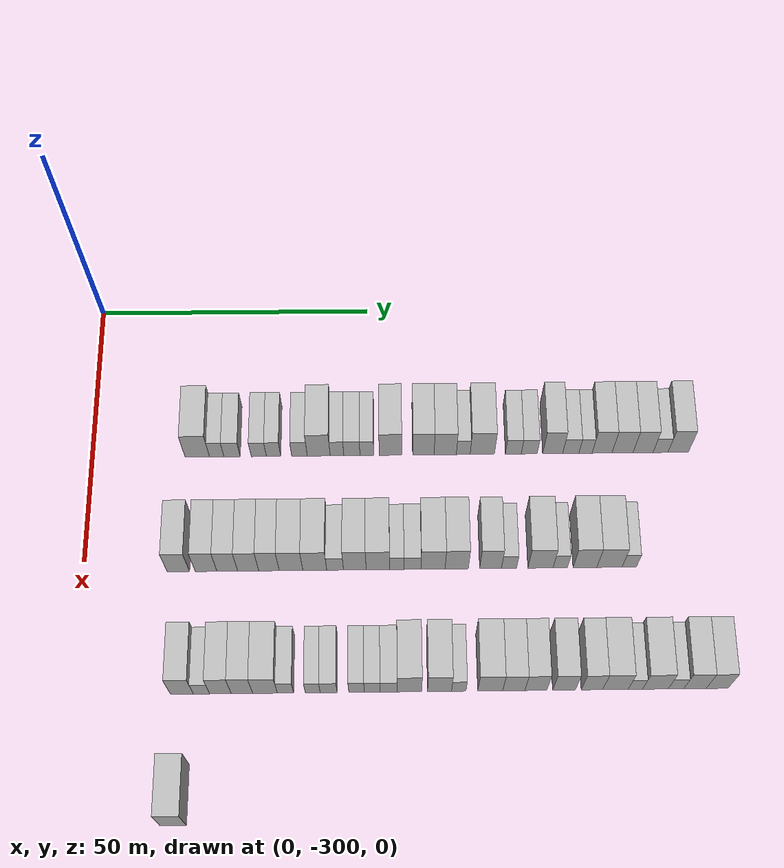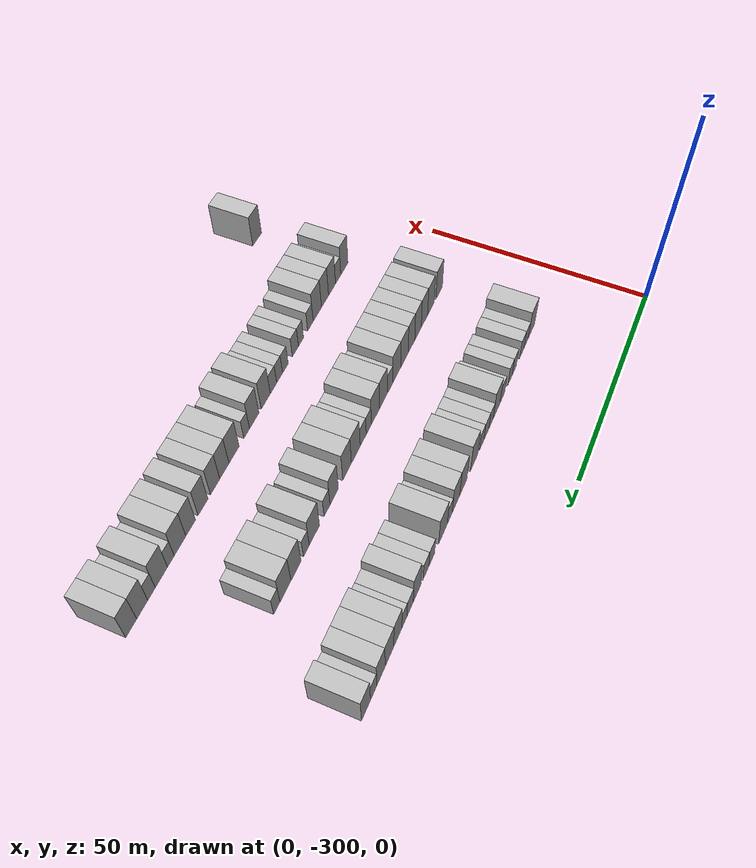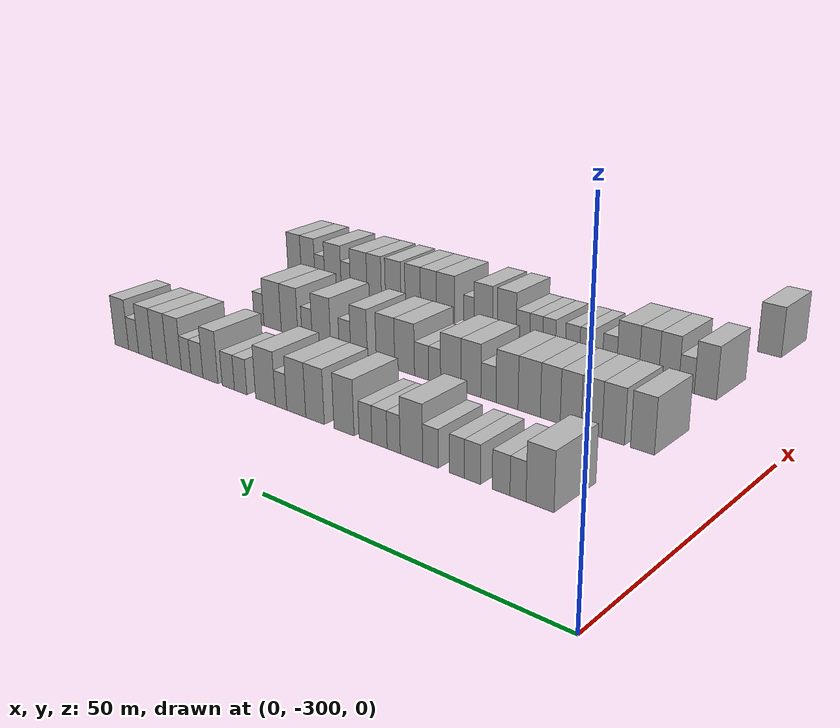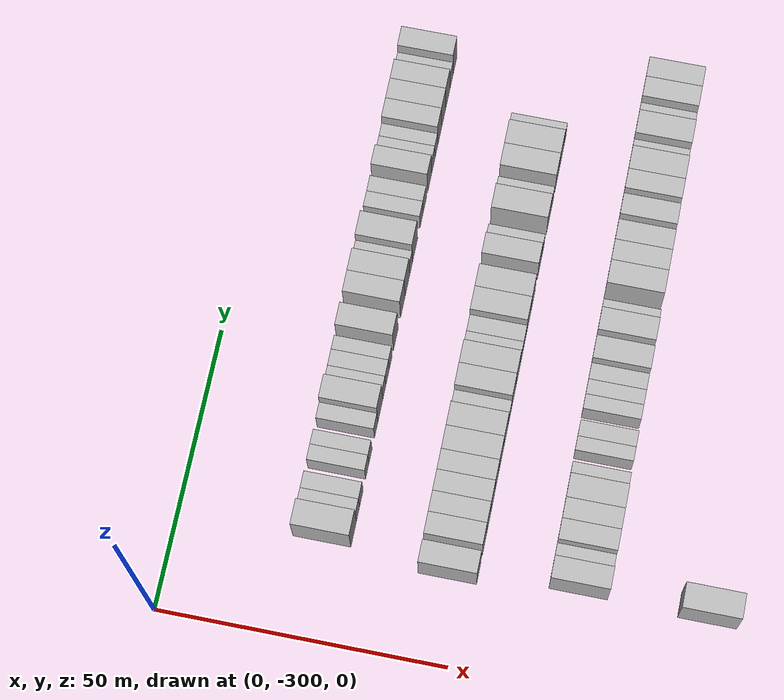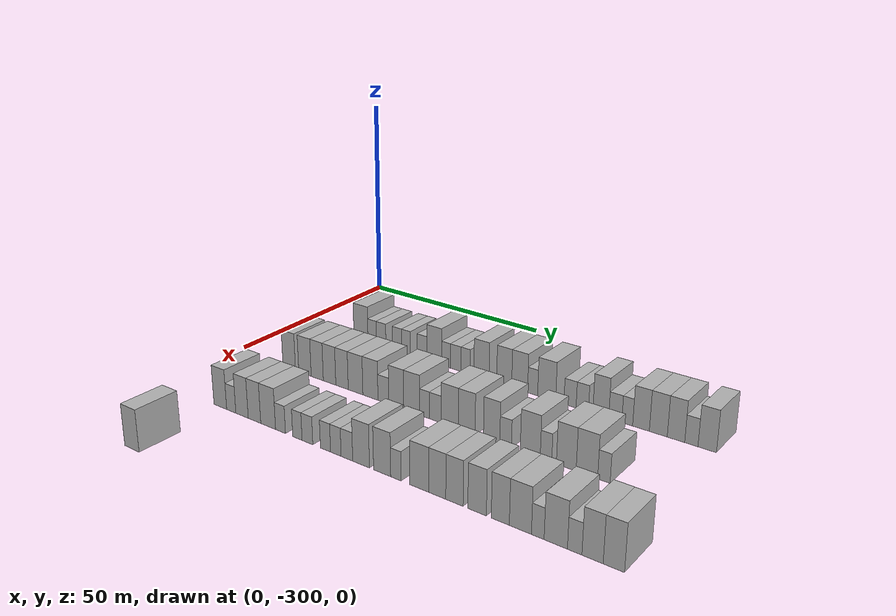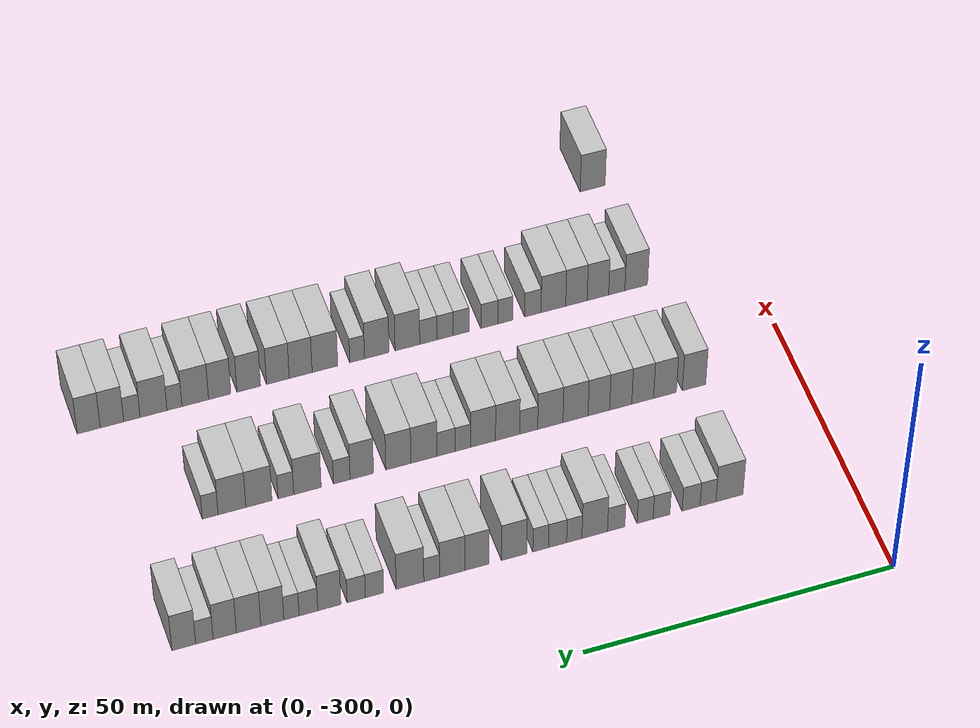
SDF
<sdf version="1.6">
 <world name="default">
  <model name="building_24">
   <static>1</static>
   <pose>25.0000 -280.9043 0 0.000000 0.000000 0.000000</pose>
   <link name="link">
    <pose>0 0 4.50 0 0 0</pose>
    <collision name="collision"><geometry><box><size>10.0000 4.4493 9.0000</size></box></geometry></collision>
    <visual name="visual">
     <cast_shadows>0</cast_shadows>
     <geometry><box><size>10.0000 4.4493 9.0000</size></box></geometry>
     <material>
      <script>
       <uri>model://HANNAS_wall/materials/scripts</uri>
       <uri>model://HANNAS_wall/materials/textures</uri>
       <name>vrc/HANNAS_wall</name>
      </script>
     </material>
    </visual>
   </link>
  </model>
  <model name="building_25">
   <static>1</static>
   <pose>25.0000 -277.3716 0 0.000000 0.000000 0.000000</pose>
   <link name="link">
    <pose>0 0 3.00 0 0 0</pose>
    <collision name="collision"><geometry><box><size>10.0000 2.6160 6.0000</size></box></geometry></collision>
    <visual name="visual">
     <cast_shadows>0</cast_shadows>
     <geometry><box><size>10.0000 2.6160 6.0000</size></box></geometry>
     <material>
      <script>
       <uri>model://HANNAS_wall/materials/scripts</uri>
       <uri>model://HANNAS_wall/materials/textures</uri>
       <name>vrc/HANNAS_wall</name>
      </script>
     </material>
    </visual>
   </link>
  </model>
  <model name="building_26">
   <static>1</static>
   <pose>25.0000 -274.5871 0 0.000000 0.000000 0.000000</pose>
   <link name="link">
    <pose>0 0 3.00 0 0 0</pose>
    <collision name="collision"><geometry><box><size>10.0000 2.9530 6.0000</size></box></geometry></collision>
    <visual name="visual">
     <cast_shadows>0</cast_shadows>
     <geometry><box><size>10.0000 2.9530 6.0000</size></box></geometry>
     <material>
      <script>
       <uri>model://HANNAS_wall/materials/scripts</uri>
       <uri>model://HANNAS_wall/materials/textures</uri>
       <name>vrc/HANNAS_wall</name>
      </script>
     </material>
    </visual>
   </link>
  </model>
  <model name="building_27">
   <static>1</static>
   <pose>25.0000 -269.7358 0 0.000000 0.000000 0.000000</pose>
   <link name="link">
    <pose>0 0 3.00 0 0 0</pose>
    <collision name="collision"><geometry><box><size>10.0000 2.7497 6.0000</size></box></geometry></collision>
    <visual name="visual">
     <cast_shadows>0</cast_shadows>
     <geometry><box><size>10.0000 2.7497 6.0000</size></box></geometry>
     <material>
      <script>
       <uri>model://HANNAS_wall/materials/scripts</uri>
       <uri>model://HANNAS_wall/materials/textures</uri>
       <name>vrc/HANNAS_wall</name>
      </script>
     </material>
    </visual>
   </link>
  </model>
  <model name="building_28">
   <static>1</static>
   <pose>25.0000 -267.0497 0 0.000000 0.000000 0.000000</pose>
   <link name="link">
    <pose>0 0 3.00 0 0 0</pose>
    <collision name="collision"><geometry><box><size>10.0000 2.6225 6.0000</size></box></geometry></collision>
    <visual name="visual">
     <cast_shadows>0</cast_shadows>
     <geometry><box><size>10.0000 2.6225 6.0000</size></box></geometry>
     <material>
      <script>
       <uri>model://HANNAS_wall/materials/scripts</uri>
       <uri>model://HANNAS_wall/materials/textures</uri>
       <name>vrc/HANNAS_wall</name>
      </script>
     </material>
    </visual>
   </link>
  </model>
  <model name="building_29">
   <static>1</static>
   <pose>25.0000 -262.3259 0 0.000000 0.000000 0.000000</pose>
   <link name="link">
    <pose>0 0 3.00 0 0 0</pose>
    <collision name="collision"><geometry><box><size>10.0000 2.8250 6.0000</size></box></geometry></collision>
    <visual name="visual">
     <cast_shadows>0</cast_shadows>
     <geometry><box><size>10.0000 2.8250 6.0000</size></box></geometry>
     <material>
      <script>
       <uri>model://HANNAS_wall/materials/scripts</uri>
       <uri>model://HANNAS_wall/materials/textures</uri>
       <name>vrc/HANNAS_wall</name>
      </script>
     </material>
    </visual>
   </link>
  </model>
  <model name="building_30">
   <static>1</static>
   <pose>25.0000 -258.8280 0 0.000000 0.000000 0.000000</pose>
   <link name="link">
    <pose>0 0 4.50 0 0 0</pose>
    <collision name="collision"><geometry><box><size>10.0000 4.1708 9.0000</size></box></geometry></collision>
    <visual name="visual">
     <cast_shadows>0</cast_shadows>
     <geometry><box><size>10.0000 4.1708 9.0000</size></box></geometry>
     <material>
      <script>
       <uri>model://HANNAS_wall/materials/scripts</uri>
       <uri>model://HANNAS_wall/materials/textures</uri>
       <name>vrc/HANNAS_wall</name>
      </script>
     </material>
    </visual>
   </link>
  </model>
  <model name="building_31">
   <static>1</static>
   <pose>25.0000 -255.5040 0 0.000000 0.000000 0.000000</pose>
   <link name="link">
    <pose>0 0 3.00 0 0 0</pose>
    <collision name="collision"><geometry><box><size>10.0000 2.4774 6.0000</size></box></geometry></collision>
    <visual name="visual">
     <cast_shadows>0</cast_shadows>
     <geometry><box><size>10.0000 2.4774 6.0000</size></box></geometry>
     <material>
      <script>
       <uri>model://HANNAS_wall/materials/scripts</uri>
       <uri>model://HANNAS_wall/materials/textures</uri>
       <name>vrc/HANNAS_wall</name>
      </script>
     </material>
    </visual>
   </link>
  </model>
  <model name="building_32">
   <static>1</static>
   <pose>25.0000 -252.7962 0 0.000000 0.000000 0.000000</pose>
   <link name="link">
    <pose>0 0 3.00 0 0 0</pose>
    <collision name="collision"><geometry><box><size>10.0000 2.9381 6.0000</size></box></geometry></collision>
    <visual name="visual">
     <cast_shadows>0</cast_shadows>
     <geometry><box><size>10.0000 2.9381 6.0000</size></box></geometry>
     <material>
      <script>
       <uri>model://HANNAS_wall/materials/scripts</uri>
       <uri>model://HANNAS_wall/materials/textures</uri>
       <name>vrc/HANNAS_wall</name>
      </script>
     </material>
    </visual>
   </link>
  </model>
  <model name="building_33">
   <static>1</static>
   <pose>25.0000 -250.0667 0 0.000000 0.000000 0.000000</pose>
   <link name="link">
    <pose>0 0 3.00 0 0 0</pose>
    <collision name="collision"><geometry><box><size>10.0000 2.5209 6.0000</size></box></geometry></collision>
    <visual name="visual">
     <cast_shadows>0</cast_shadows>
     <geometry><box><size>10.0000 2.5209 6.0000</size></box></geometry>
     <material>
      <script>
       <uri>model://HANNAS_wall/materials/scripts</uri>
       <uri>model://HANNAS_wall/materials/textures</uri>
       <name>vrc/HANNAS_wall</name>
      </script>
     </material>
    </visual>
   </link>
  </model>
  <model name="building_34">
   <static>1</static>
   <pose>25.0000 -245.7755 0 0.000000 0.000000 0.000000</pose>
   <link name="link">
    <pose>0 0 4.50 0 0 0</pose>
    <collision name="collision"><geometry><box><size>10.0000 4.0617 9.0000</size></box></geometry></collision>
    <visual name="visual">
     <cast_shadows>0</cast_shadows>
     <geometry><box><size>10.0000 4.0617 9.0000</size></box></geometry>
     <material>
      <script>
       <uri>model://HANNAS_wall/materials/scripts</uri>
       <uri>model://HANNAS_wall/materials/textures</uri>
       <name>vrc/HANNAS_wall</name>
      </script>
     </material>
    </visual>
   </link>
  </model>
  <model name="building_35">
   <static>1</static>
   <pose>25.0000 -239.7997 0 0.000000 0.000000 0.000000</pose>
   <link name="link">
    <pose>0 0 4.50 0 0 0</pose>
    <collision name="collision"><geometry><box><size>10.0000 3.8898 9.0000</size></box></geometry></collision>
    <visual name="visual">
     <cast_shadows>0</cast_shadows>
     <geometry><box><size>10.0000 3.8898 9.0000</size></box></geometry>
     <material>
      <script>
       <uri>model://HANNAS_wall/materials/scripts</uri>
       <uri>model://HANNAS_wall/materials/textures</uri>
       <name>vrc/HANNAS_wall</name>
      </script>
     </material>
    </visual>
   </link>
  </model>
  <model name="building_36">
   <static>1</static>
   <pose>25.0000 -235.8265 0 0.000000 0.000000 0.000000</pose>
   <link name="link">
    <pose>0 0 4.50 0 0 0</pose>
    <collision name="collision"><geometry><box><size>10.0000 4.0566 9.0000</size></box></geometry></collision>
    <visual name="visual">
     <cast_shadows>0</cast_shadows>
     <geometry><box><size>10.0000 4.0566 9.0000</size></box></geometry>
     <material>
      <script>
       <uri>model://HANNAS_wall/materials/scripts</uri>
       <uri>model://HANNAS_wall/materials/textures</uri>
       <name>vrc/HANNAS_wall</name>
      </script>
     </material>
    </visual>
   </link>
  </model>
  <model name="building_37">
   <static>1</static>
   <pose>25.0000 -232.5403 0 0.000000 0.000000 0.000000</pose>
   <link name="link">
    <pose>0 0 3.00 0 0 0</pose>
    <collision name="collision"><geometry><box><size>10.0000 2.5158 6.0000</size></box></geometry></collision>
    <visual name="visual">
     <cast_shadows>0</cast_shadows>
     <geometry><box><size>10.0000 2.5158 6.0000</size></box></geometry>
     <material>
      <script>
       <uri>model://HANNAS_wall/materials/scripts</uri>
       <uri>model://HANNAS_wall/materials/textures</uri>
       <name>vrc/HANNAS_wall</name>
      </script>
     </material>
    </visual>
   </link>
  </model>
  <model name="building_38">
   <static>1</static>
   <pose>25.0000 -229.0712 0 0.000000 0.000000 0.000000</pose>
   <link name="link">
    <pose>0 0 4.50 0 0 0</pose>
    <collision name="collision"><geometry><box><size>10.0000 4.4224 9.0000</size></box></geometry></collision>
    <visual name="visual">
     <cast_shadows>0</cast_shadows>
     <geometry><box><size>10.0000 4.4224 9.0000</size></box></geometry>
     <material>
      <script>
       <uri>model://HANNAS_wall/materials/scripts</uri>
       <uri>model://HANNAS_wall/materials/textures</uri>
       <name>vrc/HANNAS_wall</name>
      </script>
     </material>
    </visual>
   </link>
  </model>
  <model name="building_39">
   <static>1</static>
   <pose>25.0000 -223.4115 0 0.000000 0.000000 0.000000</pose>
   <link name="link">
    <pose>0 0 3.00 0 0 0</pose>
    <collision name="collision"><geometry><box><size>10.0000 2.8970 6.0000</size></box></geometry></collision>
    <visual name="visual">
     <cast_shadows>0</cast_shadows>
     <geometry><box><size>10.0000 2.8970 6.0000</size></box></geometry>
     <material>
      <script>
       <uri>model://HANNAS_wall/materials/scripts</uri>
       <uri>model://HANNAS_wall/materials/textures</uri>
       <name>vrc/HANNAS_wall</name>
      </script>
     </material>
    </visual>
   </link>
  </model>
  <model name="building_40">
   <static>1</static>
   <pose>25.0000 -220.5135 0 0.000000 0.000000 0.000000</pose>
   <link name="link">
    <pose>0 0 3.00 0 0 0</pose>
    <collision name="collision"><geometry><box><size>10.0000 2.8990 6.0000</size></box></geometry></collision>
    <visual name="visual">
     <cast_shadows>0</cast_shadows>
     <geometry><box><size>10.0000 2.8990 6.0000</size></box></geometry>
     <material>
      <script>
       <uri>model://HANNAS_wall/materials/scripts</uri>
       <uri>model://HANNAS_wall/materials/textures</uri>
       <name>vrc/HANNAS_wall</name>
      </script>
     </material>
    </visual>
   </link>
  </model>
  <model name="building_41">
   <static>1</static>
   <pose>25.0000 -216.2388 0 0.000000 0.000000 0.000000</pose>
   <link name="link">
    <pose>0 0 4.50 0 0 0</pose>
    <collision name="collision"><geometry><box><size>10.0000 3.6503 9.0000</size></box></geometry></collision>
    <visual name="visual">
     <cast_shadows>0</cast_shadows>
     <geometry><box><size>10.0000 3.6503 9.0000</size></box></geometry>
     <material>
      <script>
       <uri>model://HANNAS_wall/materials/scripts</uri>
       <uri>model://HANNAS_wall/materials/textures</uri>
       <name>vrc/HANNAS_wall</name>
      </script>
     </material>
    </visual>
   </link>
  </model>
  <model name="building_42">
   <static>1</static>
   <pose>25.0000 -212.9397 0 0.000000 0.000000 0.000000</pose>
   <link name="link">
    <pose>0 0 3.00 0 0 0</pose>
    <collision name="collision"><geometry><box><size>10.0000 2.9478 6.0000</size></box></geometry></collision>
    <visual name="visual">
     <cast_shadows>0</cast_shadows>
     <geometry><box><size>10.0000 2.9478 6.0000</size></box></geometry>
     <material>
      <script>
       <uri>model://HANNAS_wall/materials/scripts</uri>
       <uri>model://HANNAS_wall/materials/textures</uri>
       <name>vrc/HANNAS_wall</name>
      </script>
     </material>
    </visual>
   </link>
  </model>
  <model name="building_43">
   <static>1</static>
   <pose>25.0000 -210.2617 0 0.000000 0.000000 0.000000</pose>
   <link name="link">
    <pose>0 0 3.00 0 0 0</pose>
    <collision name="collision"><geometry><box><size>10.0000 2.4082 6.0000</size></box></geometry></collision>
    <visual name="visual">
     <cast_shadows>0</cast_shadows>
     <geometry><box><size>10.0000 2.4082 6.0000</size></box></geometry>
     <material>
      <script>
       <uri>model://HANNAS_wall/materials/scripts</uri>
       <uri>model://HANNAS_wall/materials/textures</uri>
       <name>vrc/HANNAS_wall</name>
      </script>
     </material>
    </visual>
   </link>
  </model>
  <model name="building_44">
   <static>1</static>
   <pose>25.0000 -207.2394 0 0.000000 0.000000 0.000000</pose>
   <link name="link">
    <pose>0 0 4.50 0 0 0</pose>
    <collision name="collision"><geometry><box><size>10.0000 3.6364 9.0000</size></box></geometry></collision>
    <visual name="visual">
     <cast_shadows>0</cast_shadows>
     <geometry><box><size>10.0000 3.6364 9.0000</size></box></geometry>
     <material>
      <script>
       <uri>model://HANNAS_wall/materials/scripts</uri>
       <uri>model://HANNAS_wall/materials/textures</uri>
       <name>vrc/HANNAS_wall</name>
      </script>
     </material>
    </visual>
   </link>
  </model>
  <model name="building_45">
   <static>1</static>
   <pose>25.0000 -203.5100 0 0.000000 0.000000 0.000000</pose>
   <link name="link">
    <pose>0 0 4.50 0 0 0</pose>
    <collision name="collision"><geometry><box><size>10.0000 3.8225 9.0000</size></box></geometry></collision>
    <visual name="visual">
     <cast_shadows>0</cast_shadows>
     <geometry><box><size>10.0000 3.8225 9.0000</size></box></geometry>
     <material>
      <script>
       <uri>model://HANNAS_wall/materials/scripts</uri>
       <uri>model://HANNAS_wall/materials/textures</uri>
       <name>vrc/HANNAS_wall</name>
      </script>
     </material>
    </visual>
   </link>
  </model>
  <model name="building_46">
   <static>1</static>
   <pose>25.0000 -199.7730 0 0.000000 0.000000 0.000000</pose>
   <link name="link">
    <pose>0 0 4.50 0 0 0</pose>
    <collision name="collision"><geometry><box><size>10.0000 3.6515 9.0000</size></box></geometry></collision>
    <visual name="visual">
     <cast_shadows>0</cast_shadows>
     <geometry><box><size>10.0000 3.6515 9.0000</size></box></geometry>
     <material>
      <script>
       <uri>model://HANNAS_wall/materials/scripts</uri>
       <uri>model://HANNAS_wall/materials/textures</uri>
       <name>vrc/HANNAS_wall</name>
      </script>
     </material>
    </visual>
   </link>
  </model>
  <model name="building_47">
   <static>1</static>
   <pose>25.0000 -196.5905 0 0.000000 0.000000 0.000000</pose>
   <link name="link">
    <pose>0 0 3.00 0 0 0</pose>
    <collision name="collision"><geometry><box><size>10.0000 2.7136 6.0000</size></box></geometry></collision>
    <visual name="visual">
     <cast_shadows>0</cast_shadows>
     <geometry><box><size>10.0000 2.7136 6.0000</size></box></geometry>
     <material>
      <script>
       <uri>model://HANNAS_wall/materials/scripts</uri>
       <uri>model://HANNAS_wall/materials/textures</uri>
       <name>vrc/HANNAS_wall</name>
      </script>
     </material>
    </visual>
   </link>
  </model>
  <model name="building_48">
   <static>1</static>
   <pose>25.0000 -193.3687 0 0.000000 0.000000 0.000000</pose>
   <link name="link">
    <pose>0 0 4.50 0 0 0</pose>
    <collision name="collision"><geometry><box><size>10.0000 3.7300 9.0000</size></box></geometry></collision>
    <visual name="visual">
     <cast_shadows>0</cast_shadows>
     <geometry><box><size>10.0000 3.7300 9.0000</size></box></geometry>
     <material>
      <script>
       <uri>model://HANNAS_wall/materials/scripts</uri>
       <uri>model://HANNAS_wall/materials/textures</uri>
       <name>vrc/HANNAS_wall</name>
      </script>
     </material>
    </visual>
   </link>
  </model>
  <model name="building_222">
   <static>1</static>
   <pose>47.0000 -283.2785 0 0.000000 0.000000 0.000000</pose>
   <link name="link">
    <pose>0 0 4.50 0 0 0</pose>
    <collision name="collision"><geometry><box><size>10.0000 3.9299 9.0000</size></box></geometry></collision>
    <visual name="visual">
     <cast_shadows>0</cast_shadows>
     <geometry><box><size>10.0000 3.9299 9.0000</size></box></geometry>
     <material>
      <script>
       <uri>model://HANNAS_wall/materials/scripts</uri>
       <uri>model://HANNAS_wall/materials/textures</uri>
       <name>vrc/HANNAS_wall</name>
      </script>
     </material>
    </visual>
   </link>
  </model>
  <model name="building_223">
   <static>1</static>
   <pose>47.0000 -278.4022 0 0.000000 0.000000 0.000000</pose>
   <link name="link">
    <pose>0 0 4.50 0 0 0</pose>
    <collision name="collision"><geometry><box><size>10.0000 3.8228 9.0000</size></box></geometry></collision>
    <visual name="visual">
     <cast_shadows>0</cast_shadows>
     <geometry><box><size>10.0000 3.8228 9.0000</size></box></geometry>
     <material>
      <script>
       <uri>model://HANNAS_wall/materials/scripts</uri>
       <uri>model://HANNAS_wall/materials/textures</uri>
       <name>vrc/HANNAS_wall</name>
      </script>
     </material>
    </visual>
   </link>
  </model>
  <model name="building_224">
   <static>1</static>
   <pose>47.0000 -274.6658 0 0.000000 0.000000 0.000000</pose>
   <link name="link">
    <pose>0 0 4.50 0 0 0</pose>
    <collision name="collision"><geometry><box><size>10.0000 3.6499 9.0000</size></box></geometry></collision>
    <visual name="visual">
     <cast_shadows>0</cast_shadows>
     <geometry><box><size>10.0000 3.6499 9.0000</size></box></geometry>
     <material>
      <script>
       <uri>model://HANNAS_wall/materials/scripts</uri>
       <uri>model://HANNAS_wall/materials/textures</uri>
       <name>vrc/HANNAS_wall</name>
      </script>
     </material>
    </visual>
   </link>
  </model>
  <model name="building_225">
   <static>1</static>
   <pose>47.0000 -270.9950 0 0.000000 0.000000 0.000000</pose>
   <link name="link">
    <pose>0 0 4.50 0 0 0</pose>
    <collision name="collision"><geometry><box><size>10.0000 3.6918 9.0000</size></box></geometry></collision>
    <visual name="visual">
     <cast_shadows>0</cast_shadows>
     <geometry><box><size>10.0000 3.6918 9.0000</size></box></geometry>
     <material>
      <script>
       <uri>model://HANNAS_wall/materials/scripts</uri>
       <uri>model://HANNAS_wall/materials/textures</uri>
       <name>vrc/HANNAS_wall</name>
      </script>
     </material>
    </visual>
   </link>
  </model>
  <model name="building_226">
   <static>1</static>
   <pose>47.0000 -267.3469 0 0.000000 0.000000 0.000000</pose>
   <link name="link">
    <pose>0 0 4.50 0 0 0</pose>
    <collision name="collision"><geometry><box><size>10.0000 3.6044 9.0000</size></box></geometry></collision>
    <visual name="visual">
     <cast_shadows>0</cast_shadows>
     <geometry><box><size>10.0000 3.6044 9.0000</size></box></geometry>
     <material>
      <script>
       <uri>model://HANNAS_wall/materials/scripts</uri>
       <uri>model://HANNAS_wall/materials/textures</uri>
       <name>vrc/HANNAS_wall</name>
      </script>
     </material>
    </visual>
   </link>
  </model>
  <model name="building_227">
   <static>1</static>
   <pose>47.0000 -263.4674 0 0.000000 0.000000 0.000000</pose>
   <link name="link">
    <pose>0 0 4.50 0 0 0</pose>
    <collision name="collision"><geometry><box><size>10.0000 4.1545 9.0000</size></box></geometry></collision>
    <visual name="visual">
     <cast_shadows>0</cast_shadows>
     <geometry><box><size>10.0000 4.1545 9.0000</size></box></geometry>
     <material>
      <script>
       <uri>model://HANNAS_wall/materials/scripts</uri>
       <uri>model://HANNAS_wall/materials/textures</uri>
       <name>vrc/HANNAS_wall</name>
      </script>
     </material>
    </visual>
   </link>
  </model>
  <model name="building_228">
   <static>1</static>
   <pose>47.0000 -259.2918 0 0.000000 0.000000 0.000000</pose>
   <link name="link">
    <pose>0 0 4.50 0 0 0</pose>
    <collision name="collision"><geometry><box><size>10.0000 4.1968 9.0000</size></box></geometry></collision>
    <visual name="visual">
     <cast_shadows>0</cast_shadows>
     <geometry><box><size>10.0000 4.1968 9.0000</size></box></geometry>
     <material>
      <script>
       <uri>model://HANNAS_wall/materials/scripts</uri>
       <uri>model://HANNAS_wall/materials/textures</uri>
       <name>vrc/HANNAS_wall</name>
      </script>
     </material>
    </visual>
   </link>
  </model>
  <model name="building_229">
   <static>1</static>
   <pose>47.0000 -255.7187 0 0.000000 0.000000 0.000000</pose>
   <link name="link">
    <pose>0 0 3.00 0 0 0</pose>
    <collision name="collision"><geometry><box><size>10.0000 2.9493 6.0000</size></box></geometry></collision>
    <visual name="visual">
     <cast_shadows>0</cast_shadows>
     <geometry><box><size>10.0000 2.9493 6.0000</size></box></geometry>
     <material>
      <script>
       <uri>model://HANNAS_wall/materials/scripts</uri>
       <uri>model://HANNAS_wall/materials/textures</uri>
       <name>vrc/HANNAS_wall</name>
      </script>
     </material>
    </visual>
   </link>
  </model>
  <model name="building_230">
   <static>1</static>
   <pose>47.0000 -252.2417 0 0.000000 0.000000 0.000000</pose>
   <link name="link">
    <pose>0 0 4.50 0 0 0</pose>
    <collision name="collision"><geometry><box><size>10.0000 4.0048 9.0000</size></box></geometry></collision>
    <visual name="visual">
     <cast_shadows>0</cast_shadows>
     <geometry><box><size>10.0000 4.0048 9.0000</size></box></geometry>
     <material>
      <script>
       <uri>model://HANNAS_wall/materials/scripts</uri>
       <uri>model://HANNAS_wall/materials/textures</uri>
       <name>vrc/HANNAS_wall</name>
      </script>
     </material>
    </visual>
   </link>
  </model>
  <model name="building_231">
   <static>1</static>
   <pose>47.0000 -248.1757 0 0.000000 0.000000 0.000000</pose>
   <link name="link">
    <pose>0 0 4.50 0 0 0</pose>
    <collision name="collision"><geometry><box><size>10.0000 4.1272 9.0000</size></box></geometry></collision>
    <visual name="visual">
     <cast_shadows>0</cast_shadows>
     <geometry><box><size>10.0000 4.1272 9.0000</size></box></geometry>
     <material>
      <script>
       <uri>model://HANNAS_wall/materials/scripts</uri>
       <uri>model://HANNAS_wall/materials/textures</uri>
       <name>vrc/HANNAS_wall</name>
      </script>
     </material>
    </visual>
   </link>
  </model>
  <model name="building_232">
   <static>1</static>
   <pose>47.0000 -244.8613 0 0.000000 0.000000 0.000000</pose>
   <link name="link">
    <pose>0 0 3.00 0 0 0</pose>
    <collision name="collision"><geometry><box><size>10.0000 2.5017 6.0000</size></box></geometry></collision>
    <visual name="visual">
     <cast_shadows>0</cast_shadows>
     <geometry><box><size>10.0000 2.5017 6.0000</size></box></geometry>
     <material>
      <script>
       <uri>model://HANNAS_wall/materials/scripts</uri>
       <uri>model://HANNAS_wall/materials/textures</uri>
       <name>vrc/HANNAS_wall</name>
      </script>
     </material>
    </visual>
   </link>
  </model>
  <model name="building_233">
   <static>1</static>
   <pose>47.0000 -242.1208 0 0.000000 0.000000 0.000000</pose>
   <link name="link">
    <pose>0 0 3.00 0 0 0</pose>
    <collision name="collision"><geometry><box><size>10.0000 2.9793 6.0000</size></box></geometry></collision>
    <visual name="visual">
     <cast_shadows>0</cast_shadows>
     <geometry><box><size>10.0000 2.9793 6.0000</size></box></geometry>
     <material>
      <script>
       <uri>model://HANNAS_wall/materials/scripts</uri>
       <uri>model://HANNAS_wall/materials/textures</uri>
       <name>vrc/HANNAS_wall</name>
      </script>
     </material>
    </visual>
   </link>
  </model>
  <model name="building_234">
   <static>1</static>
   <pose>47.0000 -238.4997 0 0.000000 0.000000 0.000000</pose>
   <link name="link">
    <pose>0 0 4.50 0 0 0</pose>
    <collision name="collision"><geometry><box><size>10.0000 4.2629 9.0000</size></box></geometry></collision>
    <visual name="visual">
     <cast_shadows>0</cast_shadows>
     <geometry><box><size>10.0000 4.2629 9.0000</size></box></geometry>
     <material>
      <script>
       <uri>model://HANNAS_wall/materials/scripts</uri>
       <uri>model://HANNAS_wall/materials/textures</uri>
       <name>vrc/HANNAS_wall</name>
      </script>
     </material>
    </visual>
   </link>
  </model>
  <model name="building_235">
   <static>1</static>
   <pose>47.0000 -234.3214 0 0.000000 0.000000 0.000000</pose>
   <link name="link">
    <pose>0 0 4.50 0 0 0</pose>
    <collision name="collision"><geometry><box><size>10.0000 4.0937 9.0000</size></box></geometry></collision>
    <visual name="visual">
     <cast_shadows>0</cast_shadows>
     <geometry><box><size>10.0000 4.0937 9.0000</size></box></geometry>
     <material>
      <script>
       <uri>model://HANNAS_wall/materials/scripts</uri>
       <uri>model://HANNAS_wall/materials/textures</uri>
       <name>vrc/HANNAS_wall</name>
      </script>
     </material>
    </visual>
   </link>
  </model>
  <model name="building_236">
   <static>1</static>
   <pose>47.0000 -228.3665 0 0.000000 0.000000 0.000000</pose>
   <link name="link">
    <pose>0 0 4.50 0 0 0</pose>
    <collision name="collision"><geometry><box><size>10.0000 3.8160 9.0000</size></box></geometry></collision>
    <visual name="visual">
     <cast_shadows>0</cast_shadows>
     <geometry><box><size>10.0000 3.8160 9.0000</size></box></geometry>
     <material>
      <script>
       <uri>model://HANNAS_wall/materials/scripts</uri>
       <uri>model://HANNAS_wall/materials/textures</uri>
       <name>vrc/HANNAS_wall</name>
      </script>
     </material>
    </visual>
   </link>
  </model>
  <model name="building_237">
   <static>1</static>
   <pose>47.0000 -225.1185 0 0.000000 0.000000 0.000000</pose>
   <link name="link">
    <pose>0 0 3.00 0 0 0</pose>
    <collision name="collision"><geometry><box><size>10.0000 2.6800 6.0000</size></box></geometry></collision>
    <visual name="visual">
     <cast_shadows>0</cast_shadows>
     <geometry><box><size>10.0000 2.6800 6.0000</size></box></geometry>
     <material>
      <script>
       <uri>model://HANNAS_wall/materials/scripts</uri>
       <uri>model://HANNAS_wall/materials/textures</uri>
       <name>vrc/HANNAS_wall</name>
      </script>
     </material>
    </visual>
   </link>
  </model>
  <model name="building_238">
   <static>1</static>
   <pose>47.0000 -219.5553 0 0.000000 0.000000 0.000000</pose>
   <link name="link">
    <pose>0 0 4.50 0 0 0</pose>
    <collision name="collision"><geometry><box><size>10.0000 4.4463 9.0000</size></box></geometry></collision>
    <visual name="visual">
     <cast_shadows>0</cast_shadows>
     <geometry><box><size>10.0000 4.4463 9.0000</size></box></geometry>
     <material>
      <script>
       <uri>model://HANNAS_wall/materials/scripts</uri>
       <uri>model://HANNAS_wall/materials/textures</uri>
       <name>vrc/HANNAS_wall</name>
      </script>
     </material>
    </visual>
   </link>
  </model>
  <model name="building_239">
   <static>1</static>
   <pose>47.0000 -216.0750 0 0.000000 0.000000 0.000000</pose>
   <link name="link">
    <pose>0 0 3.00 0 0 0</pose>
    <collision name="collision"><geometry><box><size>10.0000 2.5144 6.0000</size></box></geometry></collision>
    <visual name="visual">
     <cast_shadows>0</cast_shadows>
     <geometry><box><size>10.0000 2.5144 6.0000</size></box></geometry>
     <material>
      <script>
       <uri>model://HANNAS_wall/materials/scripts</uri>
       <uri>model://HANNAS_wall/materials/textures</uri>
       <name>vrc/HANNAS_wall</name>
      </script>
     </material>
    </visual>
   </link>
  </model>
  <model name="building_240">
   <static>1</static>
   <pose>47.0000 -211.7207 0 0.000000 0.000000 0.000000</pose>
   <link name="link">
    <pose>0 0 4.50 0 0 0</pose>
    <collision name="collision"><geometry><box><size>10.0000 4.1941 9.0000</size></box></geometry></collision>
    <visual name="visual">
     <cast_shadows>0</cast_shadows>
     <geometry><box><size>10.0000 4.1941 9.0000</size></box></geometry>
     <material>
      <script>
       <uri>model://HANNAS_wall/materials/scripts</uri>
       <uri>model://HANNAS_wall/materials/textures</uri>
       <name>vrc/HANNAS_wall</name>
      </script>
     </material>
    </visual>
   </link>
  </model>
  <model name="building_241">
   <static>1</static>
   <pose>47.0000 -207.3967 0 0.000000 0.000000 0.000000</pose>
   <link name="link">
    <pose>0 0 4.50 0 0 0</pose>
    <collision name="collision"><geometry><box><size>10.0000 4.4540 9.0000</size></box></geometry></collision>
    <visual name="visual">
     <cast_shadows>0</cast_shadows>
     <geometry><box><size>10.0000 4.4540 9.0000</size></box></geometry>
     <material>
      <script>
       <uri>model://HANNAS_wall/materials/scripts</uri>
       <uri>model://HANNAS_wall/materials/textures</uri>
       <name>vrc/HANNAS_wall</name>
      </script>
     </material>
    </visual>
   </link>
  </model>
  <model name="building_242">
   <static>1</static>
   <pose>47.0000 -203.9042 0 0.000000 0.000000 0.000000</pose>
   <link name="link">
    <pose>0 0 3.00 0 0 0</pose>
    <collision name="collision"><geometry><box><size>10.0000 2.5310 6.0000</size></box></geometry></collision>
    <visual name="visual">
     <cast_shadows>0</cast_shadows>
     <geometry><box><size>10.0000 2.5310 6.0000</size></box></geometry>
     <material>
      <script>
       <uri>model://HANNAS_wall/materials/scripts</uri>
       <uri>model://HANNAS_wall/materials/textures</uri>
       <name>vrc/HANNAS_wall</name>
      </script>
     </material>
    </visual>
   </link>
  </model>
  <model name="building_410">
   <static>1</static>
   <pose>69.0000 -281.5743 0 0.000000 0.000000 0.000000</pose>
   <link name="link">
    <pose>0 0 4.50 0 0 0</pose>
    <collision name="collision"><geometry><box><size>10.0000 3.8816 9.0000</size></box></geometry></collision>
    <visual name="visual">
     <cast_shadows>0</cast_shadows>
     <geometry><box><size>10.0000 3.8816 9.0000</size></box></geometry>
     <material>
      <script>
       <uri>model://HANNAS_wall/materials/scripts</uri>
       <uri>model://HANNAS_wall/materials/textures</uri>
       <name>vrc/HANNAS_wall</name>
      </script>
     </material>
    </visual>
   </link>
  </model>
  <model name="building_411">
   <static>1</static>
   <pose>69.0000 -278.2540 0 0.000000 0.000000 0.000000</pose>
   <link name="link">
    <pose>0 0 3.00 0 0 0</pose>
    <collision name="collision"><geometry><box><size>10.0000 2.7591 6.0000</size></box></geometry></collision>
    <visual name="visual">
     <cast_shadows>0</cast_shadows>
     <geometry><box><size>10.0000 2.7591 6.0000</size></box></geometry>
     <material>
      <script>
       <uri>model://HANNAS_wall/materials/scripts</uri>
       <uri>model://HANNAS_wall/materials/textures</uri>
       <name>vrc/HANNAS_wall</name>
      </script>
     </material>
    </visual>
   </link>
  </model>
  <model name="building_412">
   <static>1</static>
   <pose>69.0000 -275.0421 0 0.000000 0.000000 0.000000</pose>
   <link name="link">
    <pose>0 0 4.50 0 0 0</pose>
    <collision name="collision"><geometry><box><size>10.0000 3.6648 9.0000</size></box></geometry></collision>
    <visual name="visual">
     <cast_shadows>0</cast_shadows>
     <geometry><box><size>10.0000 3.6648 9.0000</size></box></geometry>
     <material>
      <script>
       <uri>model://HANNAS_wall/materials/scripts</uri>
       <uri>model://HANNAS_wall/materials/textures</uri>
       <name>vrc/HANNAS_wall</name>
      </script>
     </material>
    </visual>
   </link>
  </model>
  <model name="building_413">
   <static>1</static>
   <pose>69.0000 -271.3926 0 0.000000 0.000000 0.000000</pose>
   <link name="link">
    <pose>0 0 4.50 0 0 0</pose>
    <collision name="collision"><geometry><box><size>10.0000 3.6341 9.0000</size></box></geometry></collision>
    <visual name="visual">
     <cast_shadows>0</cast_shadows>
     <geometry><box><size>10.0000 3.6341 9.0000</size></box></geometry>
     <material>
      <script>
       <uri>model://HANNAS_wall/materials/scripts</uri>
       <uri>model://HANNAS_wall/materials/textures</uri>
       <name>vrc/HANNAS_wall</name>
      </script>
     </material>
    </visual>
   </link>
  </model>
  <model name="building_414">
   <static>1</static>
   <pose>69.0000 -267.4771 0 0.000000 0.000000 0.000000</pose>
   <link name="link">
    <pose>0 0 4.50 0 0 0</pose>
    <collision name="collision"><geometry><box><size>10.0000 4.1970 9.0000</size></box></geometry></collision>
    <visual name="visual">
     <cast_shadows>0</cast_shadows>
     <geometry><box><size>10.0000 4.1970 9.0000</size></box></geometry>
     <material>
      <script>
       <uri>model://HANNAS_wall/materials/scripts</uri>
       <uri>model://HANNAS_wall/materials/textures</uri>
       <name>vrc/HANNAS_wall</name>
      </script>
     </material>
    </visual>
   </link>
  </model>
  <model name="building_415">
   <static>1</static>
   <pose>69.0000 -264.0015 0 0.000000 0.000000 0.000000</pose>
   <link name="link">
    <pose>0 0 3.00 0 0 0</pose>
    <collision name="collision"><geometry><box><size>10.0000 2.7542 6.0000</size></box></geometry></collision>
    <visual name="visual">
     <cast_shadows>0</cast_shadows>
     <geometry><box><size>10.0000 2.7542 6.0000</size></box></geometry>
     <material>
      <script>
       <uri>model://HANNAS_wall/materials/scripts</uri>
       <uri>model://HANNAS_wall/materials/textures</uri>
       <name>vrc/HANNAS_wall</name>
      </script>
     </material>
    </visual>
   </link>
  </model>
  <model name="building_416">
   <static>1</static>
   <pose>69.0000 -259.3648 0 0.000000 0.000000 0.000000</pose>
   <link name="link">
    <pose>0 0 3.00 0 0 0</pose>
    <collision name="collision"><geometry><box><size>10.0000 2.5191 6.0000</size></box></geometry></collision>
    <visual name="visual">
     <cast_shadows>0</cast_shadows>
     <geometry><box><size>10.0000 2.5191 6.0000</size></box></geometry>
     <material>
      <script>
       <uri>model://HANNAS_wall/materials/scripts</uri>
       <uri>model://HANNAS_wall/materials/textures</uri>
       <name>vrc/HANNAS_wall</name>
      </script>
     </material>
    </visual>
   </link>
  </model>
  <model name="building_417">
   <static>1</static>
   <pose>69.0000 -256.6692 0 0.000000 0.000000 0.000000</pose>
   <link name="link">
    <pose>0 0 3.00 0 0 0</pose>
    <collision name="collision"><geometry><box><size>10.0000 2.8722 6.0000</size></box></geometry></collision>
    <visual name="visual">
     <cast_shadows>0</cast_shadows>
     <geometry><box><size>10.0000 2.8722 6.0000</size></box></geometry>
     <material>
      <script>
       <uri>model://HANNAS_wall/materials/scripts</uri>
       <uri>model://HANNAS_wall/materials/textures</uri>
       <name>vrc/HANNAS_wall</name>
      </script>
     </material>
    </visual>
   </link>
  </model>
  <model name="building_418">
   <static>1</static>
   <pose>69.0000 -251.9150 0 0.000000 0.000000 0.000000</pose>
   <link name="link">
    <pose>0 0 3.00 0 0 0</pose>
    <collision name="collision"><geometry><box><size>10.0000 2.6360 6.0000</size></box></geometry></collision>
    <visual name="visual">
     <cast_shadows>0</cast_shadows>
     <geometry><box><size>10.0000 2.6360 6.0000</size></box></geometry>
     <material>
      <script>
       <uri>model://HANNAS_wall/materials/scripts</uri>
       <uri>model://HANNAS_wall/materials/textures</uri>
       <name>vrc/HANNAS_wall</name>
      </script>
     </material>
    </visual>
   </link>
  </model>
  <model name="building_419">
   <static>1</static>
   <pose>69.0000 -249.2531 0 0.000000 0.000000 0.000000</pose>
   <link name="link">
    <pose>0 0 3.00 0 0 0</pose>
    <collision name="collision"><geometry><box><size>10.0000 2.6879 6.0000</size></box></geometry></collision>
    <visual name="visual">
     <cast_shadows>0</cast_shadows>
     <geometry><box><size>10.0000 2.6879 6.0000</size></box></geometry>
     <material>
      <script>
       <uri>model://HANNAS_wall/materials/scripts</uri>
       <uri>model://HANNAS_wall/materials/textures</uri>
       <name>vrc/HANNAS_wall</name>
      </script>
     </material>
    </visual>
   </link>
  </model>
  <model name="building_420">
   <static>1</static>
   <pose>69.0000 -246.4506 0 0.000000 0.000000 0.000000</pose>
   <link name="link">
    <pose>0 0 3.00 0 0 0</pose>
    <collision name="collision"><geometry><box><size>10.0000 2.9171 6.0000</size></box></geometry></collision>
    <visual name="visual">
     <cast_shadows>0</cast_shadows>
     <geometry><box><size>10.0000 2.9171 6.0000</size></box></geometry>
     <material>
      <script>
       <uri>model://HANNAS_wall/materials/scripts</uri>
       <uri>model://HANNAS_wall/materials/textures</uri>
       <name>vrc/HANNAS_wall</name>
      </script>
     </material>
    </visual>
   </link>
  </model>
  <model name="building_421">
   <static>1</static>
   <pose>69.0000 -242.9317 0 0.000000 0.000000 0.000000</pose>
   <link name="link">
    <pose>0 0 4.50 0 0 0</pose>
    <collision name="collision"><geometry><box><size>10.0000 4.1208 9.0000</size></box></geometry></collision>
    <visual name="visual">
     <cast_shadows>0</cast_shadows>
     <geometry><box><size>10.0000 4.1208 9.0000</size></box></geometry>
     <material>
      <script>
       <uri>model://HANNAS_wall/materials/scripts</uri>
       <uri>model://HANNAS_wall/materials/textures</uri>
       <name>vrc/HANNAS_wall</name>
      </script>
     </material>
    </visual>
   </link>
  </model>
  <model name="building_422">
   <static>1</static>
   <pose>69.0000 -237.8289 0 0.000000 0.000000 0.000000</pose>
   <link name="link">
    <pose>0 0 4.50 0 0 0</pose>
    <collision name="collision"><geometry><box><size>10.0000 4.0847 9.0000</size></box></geometry></collision>
    <visual name="visual">
     <cast_shadows>0</cast_shadows>
     <geometry><box><size>10.0000 4.0847 9.0000</size></box></geometry>
     <material>
      <script>
       <uri>model://HANNAS_wall/materials/scripts</uri>
       <uri>model://HANNAS_wall/materials/textures</uri>
       <name>vrc/HANNAS_wall</name>
      </script>
     </material>
    </visual>
   </link>
  </model>
  <model name="building_423">
   <static>1</static>
   <pose>69.0000 -234.5602 0 0.000000 0.000000 0.000000</pose>
   <link name="link">
    <pose>0 0 3.00 0 0 0</pose>
    <collision name="collision"><geometry><box><size>10.0000 2.4527 6.0000</size></box></geometry></collision>
    <visual name="visual">
     <cast_shadows>0</cast_shadows>
     <geometry><box><size>10.0000 2.4527 6.0000</size></box></geometry>
     <material>
      <script>
       <uri>model://HANNAS_wall/materials/scripts</uri>
       <uri>model://HANNAS_wall/materials/textures</uri>
       <name>vrc/HANNAS_wall</name>
      </script>
     </material>
    </visual>
   </link>
  </model>
  <model name="building_424">
   <static>1</static>
   <pose>69.0000 -229.2137 0 0.000000 0.000000 0.000000</pose>
   <link name="link">
    <pose>0 0 4.50 0 0 0</pose>
    <collision name="collision"><geometry><box><size>10.0000 4.2404 9.0000</size></box></geometry></collision>
    <visual name="visual">
     <cast_shadows>0</cast_shadows>
     <geometry><box><size>10.0000 4.2404 9.0000</size></box></geometry>
     <material>
      <script>
       <uri>model://HANNAS_wall/materials/scripts</uri>
       <uri>model://HANNAS_wall/materials/textures</uri>
       <name>vrc/HANNAS_wall</name>
      </script>
     </material>
    </visual>
   </link>
  </model>
  <model name="building_425">
   <static>1</static>
   <pose>69.0000 -225.2039 0 0.000000 0.000000 0.000000</pose>
   <link name="link">
    <pose>0 0 4.50 0 0 0</pose>
    <collision name="collision"><geometry><box><size>10.0000 3.7790 9.0000</size></box></geometry></collision>
    <visual name="visual">
     <cast_shadows>0</cast_shadows>
     <geometry><box><size>10.0000 3.7790 9.0000</size></box></geometry>
     <material>
      <script>
       <uri>model://HANNAS_wall/materials/scripts</uri>
       <uri>model://HANNAS_wall/materials/textures</uri>
       <name>vrc/HANNAS_wall</name>
      </script>
     </material>
    </visual>
   </link>
  </model>
  <model name="building_426">
   <static>1</static>
   <pose>69.0000 -221.4460 0 0.000000 0.000000 0.000000</pose>
   <link name="link">
    <pose>0 0 4.50 0 0 0</pose>
    <collision name="collision"><geometry><box><size>10.0000 3.7368 9.0000</size></box></geometry></collision>
    <visual name="visual">
     <cast_shadows>0</cast_shadows>
     <geometry><box><size>10.0000 3.7368 9.0000</size></box></geometry>
     <material>
      <script>
       <uri>model://HANNAS_wall/materials/scripts</uri>
       <uri>model://HANNAS_wall/materials/textures</uri>
       <name>vrc/HANNAS_wall</name>
      </script>
     </material>
    </visual>
   </link>
  </model>
  <model name="building_427">
   <static>1</static>
   <pose>69.0000 -216.6434 0 0.000000 0.000000 0.000000</pose>
   <link name="link">
    <pose>0 0 4.50 0 0 0</pose>
    <collision name="collision"><geometry><box><size>10.0000 3.8683 9.0000</size></box></geometry></collision>
    <visual name="visual">
     <cast_shadows>0</cast_shadows>
     <geometry><box><size>10.0000 3.8683 9.0000</size></box></geometry>
     <material>
      <script>
       <uri>model://HANNAS_wall/materials/scripts</uri>
       <uri>model://HANNAS_wall/materials/textures</uri>
       <name>vrc/HANNAS_wall</name>
      </script>
     </material>
    </visual>
   </link>
  </model>
  <model name="building_428">
   <static>1</static>
   <pose>69.0000 -211.8865 0 0.000000 0.000000 0.000000</pose>
   <link name="link">
    <pose>0 0 4.50 0 0 0</pose>
    <collision name="collision"><geometry><box><size>10.0000 3.6456 9.0000</size></box></geometry></collision>
    <visual name="visual">
     <cast_shadows>0</cast_shadows>
     <geometry><box><size>10.0000 3.6456 9.0000</size></box></geometry>
     <material>
      <script>
       <uri>model://HANNAS_wall/materials/scripts</uri>
       <uri>model://HANNAS_wall/materials/textures</uri>
       <name>vrc/HANNAS_wall</name>
      </script>
     </material>
    </visual>
   </link>
  </model>
  <model name="building_429">
   <static>1</static>
   <pose>69.0000 -207.8870 0 0.000000 0.000000 0.000000</pose>
   <link name="link">
    <pose>0 0 4.50 0 0 0</pose>
    <collision name="collision"><geometry><box><size>10.0000 4.3533 9.0000</size></box></geometry></collision>
    <visual name="visual">
     <cast_shadows>0</cast_shadows>
     <geometry><box><size>10.0000 4.3533 9.0000</size></box></geometry>
     <material>
      <script>
       <uri>model://HANNAS_wall/materials/scripts</uri>
       <uri>model://HANNAS_wall/materials/textures</uri>
       <name>vrc/HANNAS_wall</name>
      </script>
     </material>
    </visual>
   </link>
  </model>
  <model name="building_430">
   <static>1</static>
   <pose>69.0000 -204.4922 0 0.000000 0.000000 0.000000</pose>
   <link name="link">
    <pose>0 0 3.00 0 0 0</pose>
    <collision name="collision"><geometry><box><size>10.0000 2.4363 6.0000</size></box></geometry></collision>
    <visual name="visual">
     <cast_shadows>0</cast_shadows>
     <geometry><box><size>10.0000 2.4363 6.0000</size></box></geometry>
     <material>
      <script>
       <uri>model://HANNAS_wall/materials/scripts</uri>
       <uri>model://HANNAS_wall/materials/textures</uri>
       <name>vrc/HANNAS_wall</name>
      </script>
     </material>
    </visual>
   </link>
  </model>
  <model name="building_431">
   <static>1</static>
   <pose>69.0000 -201.0792 0 0.000000 0.000000 0.000000</pose>
   <link name="link">
    <pose>0 0 4.50 0 0 0</pose>
    <collision name="collision"><geometry><box><size>10.0000 4.3899 9.0000</size></box></geometry></collision>
    <visual name="visual">
     <cast_shadows>0</cast_shadows>
     <geometry><box><size>10.0000 4.3899 9.0000</size></box></geometry>
     <material>
      <script>
       <uri>model://HANNAS_wall/materials/scripts</uri>
       <uri>model://HANNAS_wall/materials/textures</uri>
       <name>vrc/HANNAS_wall</name>
      </script>
     </material>
    </visual>
   </link>
  </model>
  <model name="building_432">
   <static>1</static>
   <pose>69.0000 -197.5562 0 0.000000 0.000000 0.000000</pose>
   <link name="link">
    <pose>0 0 3.00 0 0 0</pose>
    <collision name="collision"><geometry><box><size>10.0000 2.6560 6.0000</size></box></geometry></collision>
    <visual name="visual">
     <cast_shadows>0</cast_shadows>
     <geometry><box><size>10.0000 2.6560 6.0000</size></box></geometry>
     <material>
      <script>
       <uri>model://HANNAS_wall/materials/scripts</uri>
       <uri>model://HANNAS_wall/materials/textures</uri>
       <name>vrc/HANNAS_wall</name>
      </script>
     </material>
    </visual>
   </link>
  </model>
  <model name="building_433">
   <static>1</static>
   <pose>69.0000 -194.3208 0 0.000000 0.000000 0.000000</pose>
   <link name="link">
    <pose>0 0 4.50 0 0 0</pose>
    <collision name="collision"><geometry><box><size>10.0000 3.8149 9.0000</size></box></geometry></collision>
    <visual name="visual">
     <cast_shadows>0</cast_shadows>
     <geometry><box><size>10.0000 3.8149 9.0000</size></box></geometry>
     <material>
      <script>
       <uri>model://HANNAS_wall/materials/scripts</uri>
       <uri>model://HANNAS_wall/materials/textures</uri>
       <name>vrc/HANNAS_wall</name>
      </script>
     </material>
    </visual>
   </link>
  </model>
  <model name="building_434">
   <static>1</static>
   <pose>69.0000 -190.5449 0 0.000000 0.000000 0.000000</pose>
   <link name="link">
    <pose>0 0 4.50 0 0 0</pose>
    <collision name="collision"><geometry><box><size>10.0000 3.7369 9.0000</size></box></geometry></collision>
    <visual name="visual">
     <cast_shadows>0</cast_shadows>
     <geometry><box><size>10.0000 3.7369 9.0000</size></box></geometry>
     <material>
      <script>
       <uri>model://HANNAS_wall/materials/scripts</uri>
       <uri>model://HANNAS_wall/materials/textures</uri>
       <name>vrc/HANNAS_wall</name>
      </script>
     </material>
    </visual>
   </link>
  </model>
  <model name="building_605">
   <static>1</static>
   <pose>91.0000 -281.9723 0 0.000000 0.000000 0.000000</pose>
   <link name="link">
    <pose>0 0 4.50 0 0 0</pose>
    <collision name="collision"><geometry><box><size>10.0000 4.3435 9.0000</size></box></geometry></collision>
    <visual name="visual">
     <cast_shadows>0</cast_shadows>
     <geometry><box><size>10.0000 4.3435 9.0000</size></box></geometry>
     <material>
      <script>
       <uri>model://HANNAS_wall/materials/scripts</uri>
       <uri>model://HANNAS_wall/materials/textures</uri>
       <name>vrc/HANNAS_wall</name>
      </script>
     </material>
    </visual>
   </link>
  </model>
 </world>
</sdf>
